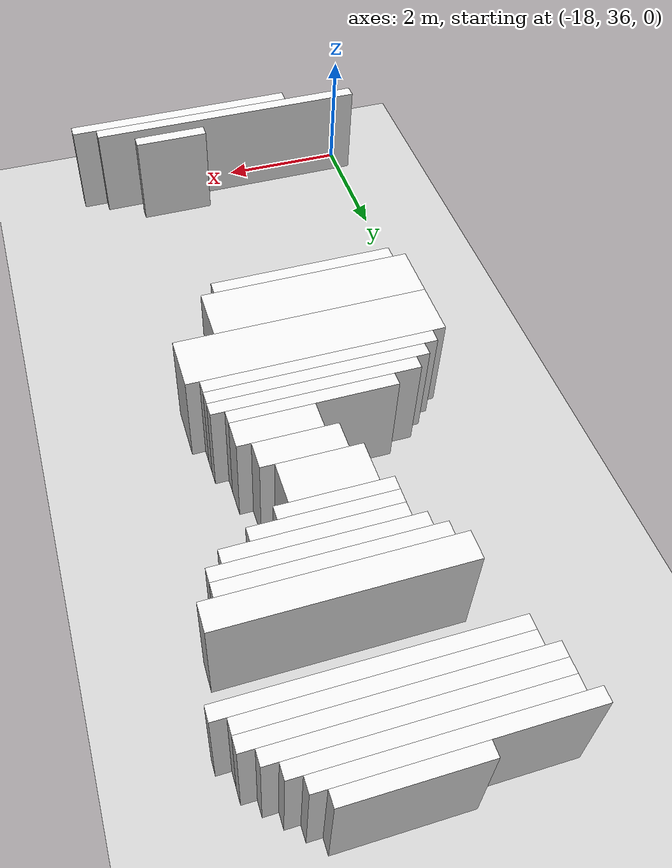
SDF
<sdf version="1.7">
 <world name="default">
  <model name="ground_plane">
   <static>1</static>
   <link name="link">
    <collision name="collision">
     <geometry><plane><normal>0 0 1</normal><size>120 120</size></plane></geometry>
    </collision>
    <visual name="visual">
     <geometry><plane><normal>0 0 1</normal><size>120 120</size></plane></geometry>
     <material>
      <script><uri>file://media/materials/scripts/gazebo.material</uri><name>Gazebo/Grey</name></script>
     </material>
    </visual>
   </link>
  </model>
  <model name="random_complex_01_model">
   <static>1</static>
   <link name="obs_18">
    <pose>-14.9000 47.9000 0.8000 0 0 0</pose>
    <collision name="obs_18_col"><geometry><box><size>1.8000 0.2000 1.6000</size></box></geometry></collision>
    <visual name="obs_18_vis">
     <geometry><box><size>1.8000 0.2000 1.6000</size></box></geometry>
     <material>
      <script><uri>file://media/materials/scripts/gazebo.material</uri><name>Gazebo/White</name></script>
     </material>
    </visual>
   </link>
   <link name="obs_24">
    <pose>-15.5000 47.7000 0.8000 0 0 0</pose>
    <collision name="obs_24_col"><geometry><box><size>3.4000 0.2000 1.6000</size></box></geometry></collision>
    <visual name="obs_24_vis">
     <geometry><box><size>3.4000 0.2000 1.6000</size></box></geometry>
     <material>
      <script><uri>file://media/materials/scripts/gazebo.material</uri><name>Gazebo/White</name></script>
     </material>
    </visual>
   </link>
   <link name="obs_31">
    <pose>-15.3000 47.5000 0.8000 0 0 0</pose>
    <collision name="obs_31_col"><geometry><box><size>3.4000 0.2000 1.6000</size></box></geometry></collision>
    <visual name="obs_31_vis">
     <geometry><box><size>3.4000 0.2000 1.6000</size></box></geometry>
     <material>
      <script><uri>file://media/materials/scripts/gazebo.material</uri><name>Gazebo/White</name></script>
     </material>
    </visual>
   </link>
   <link name="obs_38">
    <pose>-15.2000 47.3000 0.8000 0 0 0</pose>
    <collision name="obs_38_col"><geometry><box><size>3.6000 0.2000 1.6000</size></box></geometry></collision>
    <visual name="obs_38_vis">
     <geometry><box><size>3.6000 0.2000 1.6000</size></box></geometry>
     <material>
      <script><uri>file://media/materials/scripts/gazebo.material</uri><name>Gazebo/White</name></script>
     </material>
    </visual>
   </link>
   <link name="obs_44">
    <pose>-15.1000 47.1000 0.8000 0 0 0</pose>
    <collision name="obs_44_col"><geometry><box><size>3.8000 0.2000 1.6000</size></box></geometry></collision>
    <visual name="obs_44_vis">
     <geometry><box><size>3.8000 0.2000 1.6000</size></box></geometry>
     <material>
      <script><uri>file://media/materials/scripts/gazebo.material</uri><name>Gazebo/White</name></script>
     </material>
    </visual>
   </link>
   <link name="obs_51">
    <pose>-15.0000 46.9000 0.8000 0 0 0</pose>
    <collision name="obs_51_col"><geometry><box><size>3.6000 0.2000 1.6000</size></box></geometry></collision>
    <visual name="obs_51_vis">
     <geometry><box><size>3.6000 0.2000 1.6000</size></box></geometry>
     <material>
      <script><uri>file://media/materials/scripts/gazebo.material</uri><name>Gazebo/White</name></script>
     </material>
    </visual>
   </link>
   <link name="obs_58">
    <pose>-14.9000 46.7000 0.8000 0 0 0</pose>
    <collision name="obs_58_col"><geometry><box><size>3.8000 0.2000 1.6000</size></box></geometry></collision>
    <visual name="obs_58_vis">
     <geometry><box><size>3.8000 0.2000 1.6000</size></box></geometry>
     <material>
      <script><uri>file://media/materials/scripts/gazebo.material</uri><name>Gazebo/White</name></script>
     </material>
    </visual>
   </link>
   <link name="obs_105">
    <pose>-14.9000 45.6000 0.8000 0 0 0</pose>
    <collision name="obs_105_col"><geometry><box><size>3.4000 0.4000 1.6000</size></box></geometry></collision>
    <visual name="obs_105_vis">
     <geometry><box><size>3.4000 0.4000 1.6000</size></box></geometry>
     <material>
      <script><uri>file://media/materials/scripts/gazebo.material</uri><name>Gazebo/White</name></script>
     </material>
    </visual>
   </link>
   <link name="obs_119">
    <pose>-14.9000 45.3000 0.8000 0 0 0</pose>
    <collision name="obs_119_col"><geometry><box><size>3.0000 0.2000 1.6000</size></box></geometry></collision>
    <visual name="obs_119_vis">
     <geometry><box><size>3.0000 0.2000 1.6000</size></box></geometry>
     <material>
      <script><uri>file://media/materials/scripts/gazebo.material</uri><name>Gazebo/White</name></script>
     </material>
    </visual>
   </link>
   <link name="obs_129">
    <pose>-14.8000 45.1000 0.8000 0 0 0</pose>
    <collision name="obs_129_col"><geometry><box><size>2.8000 0.2000 1.6000</size></box></geometry></collision>
    <visual name="obs_129_vis">
     <geometry><box><size>2.8000 0.2000 1.6000</size></box></geometry>
     <material>
      <script><uri>file://media/materials/scripts/gazebo.material</uri><name>Gazebo/White</name></script>
     </material>
    </visual>
   </link>
   <link name="obs_137">
    <pose>-14.8000 44.9000 0.8000 0 0 0</pose>
    <collision name="obs_137_col"><geometry><box><size>2.4000 0.2000 1.6000</size></box></geometry></collision>
    <visual name="obs_137_vis">
     <geometry><box><size>2.4000 0.2000 1.6000</size></box></geometry>
     <material>
      <script><uri>file://media/materials/scripts/gazebo.material</uri><name>Gazebo/White</name></script>
     </material>
    </visual>
   </link>
   <link name="obs_146">
    <pose>-15.0000 44.7000 0.8000 0 0 0</pose>
    <collision name="obs_146_col"><geometry><box><size>2.0000 0.2000 1.6000</size></box></geometry></collision>
    <visual name="obs_146_vis">
     <geometry><box><size>2.0000 0.2000 1.6000</size></box></geometry>
     <material>
      <script><uri>file://media/materials/scripts/gazebo.material</uri><name>Gazebo/White</name></script>
     </material>
    </visual>
   </link>
   <link name="obs_153">
    <pose>-15.2000 44.5000 0.8000 0 0 0</pose>
    <collision name="obs_153_col"><geometry><box><size>1.6000 0.2000 1.6000</size></box></geometry></collision>
    <visual name="obs_153_vis">
     <geometry><box><size>1.6000 0.2000 1.6000</size></box></geometry>
     <material>
      <script><uri>file://media/materials/scripts/gazebo.material</uri><name>Gazebo/White</name></script>
     </material>
    </visual>
   </link>
   <link name="obs_171">
    <pose>-15.2000 44.1000 0.8000 0 0 0</pose>
    <collision name="obs_171_col"><geometry><box><size>1.2000 0.6000 1.6000</size></box></geometry></collision>
    <visual name="obs_171_vis">
     <geometry><box><size>1.2000 0.6000 1.6000</size></box></geometry>
     <material>
      <script><uri>file://media/materials/scripts/gazebo.material</uri><name>Gazebo/White</name></script>
     </material>
    </visual>
   </link>
   <link name="obs_186">
    <pose>-15.0000 43.6000 0.8000 0 0 0</pose>
    <collision name="obs_186_col"><geometry><box><size>1.2000 0.4000 1.6000</size></box></geometry></collision>
    <visual name="obs_186_vis">
     <geometry><box><size>1.2000 0.4000 1.6000</size></box></geometry>
     <material>
      <script><uri>file://media/materials/scripts/gazebo.material</uri><name>Gazebo/White</name></script>
     </material>
    </visual>
   </link>
   <link name="obs_199">
    <pose>-14.8000 43.2000 0.8000 0 0 0</pose>
    <collision name="obs_199_col"><geometry><box><size>1.2000 0.4000 1.6000</size></box></geometry></collision>
    <visual name="obs_199_vis">
     <geometry><box><size>1.2000 0.4000 1.6000</size></box></geometry>
     <material>
      <script><uri>file://media/materials/scripts/gazebo.material</uri><name>Gazebo/White</name></script>
     </material>
    </visual>
   </link>
   <link name="obs_208">
    <pose>-15.4000 42.9000 0.8000 0 0 0</pose>
    <collision name="obs_208_col"><geometry><box><size>2.4000 0.2000 1.6000</size></box></geometry></collision>
    <visual name="obs_208_vis">
     <geometry><box><size>2.4000 0.2000 1.6000</size></box></geometry>
     <material>
      <script><uri>file://media/materials/scripts/gazebo.material</uri><name>Gazebo/White</name></script>
     </material>
    </visual>
   </link>
   <link name="obs_215">
    <pose>-15.5000 42.7000 0.8000 0 0 0</pose>
    <collision name="obs_215_col"><geometry><box><size>3.0000 0.2000 1.6000</size></box></geometry></collision>
    <visual name="obs_215_vis">
     <geometry><box><size>3.0000 0.2000 1.6000</size></box></geometry>
     <material>
      <script><uri>file://media/materials/scripts/gazebo.material</uri><name>Gazebo/White</name></script>
     </material>
    </visual>
   </link>
   <link name="obs_221">
    <pose>-15.6000 42.5000 0.8000 0 0 0</pose>
    <collision name="obs_221_col"><geometry><box><size>3.2000 0.2000 1.6000</size></box></geometry></collision>
    <visual name="obs_221_vis">
     <geometry><box><size>3.2000 0.2000 1.6000</size></box></geometry>
     <material>
      <script><uri>file://media/materials/scripts/gazebo.material</uri><name>Gazebo/White</name></script>
     </material>
    </visual>
   </link>
   <link name="obs_227">
    <pose>-15.7000 42.3000 0.8000 0 0 0</pose>
    <collision name="obs_227_col"><geometry><box><size>3.4000 0.2000 1.6000</size></box></geometry></collision>
    <visual name="obs_227_vis">
     <geometry><box><size>3.4000 0.2000 1.6000</size></box></geometry>
     <material>
      <script><uri>file://media/materials/scripts/gazebo.material</uri><name>Gazebo/White</name></script>
     </material>
    </visual>
   </link>
   <link name="obs_248">
    <pose>-15.7000 41.8000 0.8000 0 0 0</pose>
    <collision name="obs_248_col"><geometry><box><size>3.8000 0.8000 1.6000</size></box></geometry></collision>
    <visual name="obs_248_vis">
     <geometry><box><size>3.8000 0.8000 1.6000</size></box></geometry>
     <material>
      <script><uri>file://media/materials/scripts/gazebo.material</uri><name>Gazebo/White</name></script>
     </material>
    </visual>
   </link>
   <link name="obs_278">
    <pose>-16.0000 41.0000 0.8000 0 0 0</pose>
    <collision name="obs_278_col"><geometry><box><size>3.2000 0.8000 1.6000</size></box></geometry></collision>
    <visual name="obs_278_vis">
     <geometry><box><size>3.2000 0.8000 1.6000</size></box></geometry>
     <material>
      <script><uri>file://media/materials/scripts/gazebo.material</uri><name>Gazebo/White</name></script>
     </material>
    </visual>
   </link>
   <link name="obs_285">
    <pose>-16.0000 40.5000 0.8000 0 0 0</pose>
    <collision name="obs_285_col"><geometry><box><size>2.8000 0.2000 1.6000</size></box></geometry></collision>
    <visual name="obs_285_vis">
     <geometry><box><size>2.8000 0.2000 1.6000</size></box></geometry>
     <material>
      <script><uri>file://media/materials/scripts/gazebo.material</uri><name>Gazebo/White</name></script>
     </material>
    </visual>
   </link>
   <link name="obs_381">
    <pose>-14.8000 36.7000 0.8000 0 0 0</pose>
    <collision name="obs_381_col"><geometry><box><size>1.2000 0.2000 1.6000</size></box></geometry></collision>
    <visual name="obs_381_vis">
     <geometry><box><size>1.2000 0.2000 1.6000</size></box></geometry>
     <material>
      <script><uri>file://media/materials/scripts/gazebo.material</uri><name>Gazebo/White</name></script>
     </material>
    </visual>
   </link>
   <link name="obs_397">
    <pose>-15.9000 36.3000 0.8000 0 0 0</pose>
    <collision name="obs_397_col"><geometry><box><size>4.6000 0.2000 1.6000</size></box></geometry></collision>
    <visual name="obs_397_vis">
     <geometry><box><size>4.6000 0.2000 1.6000</size></box></geometry>
     <material>
      <script><uri>file://media/materials/scripts/gazebo.material</uri><name>Gazebo/White</name></script>
     </material>
    </visual>
   </link>
   <link name="obs_407">
    <pose>-15.1000 36.1000 0.8000 0 0 0</pose>
    <collision name="obs_407_col"><geometry><box><size>3.8000 0.2000 1.6000</size></box></geometry></collision>
    <visual name="obs_407_vis">
     <geometry><box><size>3.8000 0.2000 1.6000</size></box></geometry>
     <material>
      <script><uri>file://media/materials/scripts/gazebo.material</uri><name>Gazebo/White</name></script>
     </material>
    </visual>
   </link>
  </model>
 </world>
</sdf>
